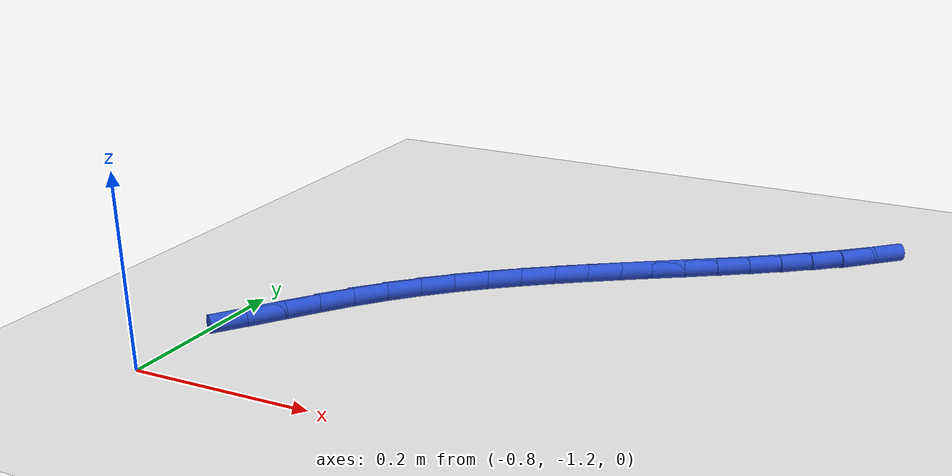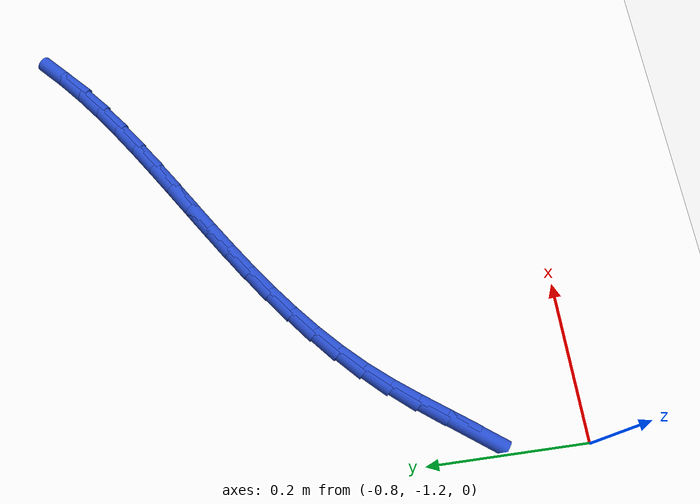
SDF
<sdf version="1.6">
 <world name="default">
  <model name="ground_plane">
   <static>1</static>
   <link name="link">
    <collision name="collision">
     <geometry><plane><normal>0 0 1</normal><size>100 100</size></plane></geometry>
     <surface><friction><ode><mu>100</mu><mu2>50</mu2></ode></friction></surface>
    </collision>
    <visual name="visual">
     <cast_shadows>0</cast_shadows>
     <geometry><plane><normal>0 0 1</normal><size>100 100</size></plane></geometry>
     <material>
      <script><uri>file://media/materials/scripts/gazebo.material</uri><name>Gazebo/WhiteGlow</name></script>
     </material>
    </visual>
   </link>
  </model>
  <model name="line">
   <link name="link_193">
    <pose>-0.7697127541444658 -1.066687028318899 0.01 0 1.57 0.9310728428077684</pose>
    <collision name="collision">
     <geometry><cylinder><radius>0.01</radius><length>0.08</length></cylinder></geometry>
    </collision>
    <visual name="visual">
     <material>
      <script><name>Gazebo/Blue</name><uri>file://media/materials/scripts/gazebo.material</uri></script>
     </material>
     <geometry><cylinder><radius>0.01</radius><length>0.08</length></cylinder></geometry>
    </visual>
   </link>
   <link name="link_194">
    <pose>-0.7471598686152789 -1.0363786586097241 0.01 0 1.57 0.9407574857423959</pose>
    <collision name="collision">
     <geometry><cylinder><radius>0.01</radius><length>0.08</length></cylinder></geometry>
    </collision>
    <visual name="visual">
     <material>
      <script><name>Gazebo/Blue</name><uri>file://media/materials/scripts/gazebo.material</uri></script>
     </material>
     <geometry><cylinder><radius>0.01</radius><length>0.08</length></cylinder></geometry>
    </visual>
   </link>
   <link name="link_195">
    <pose>-0.7246697009612525 -1.0055353196231323 0.01 0 1.57 0.919632203085264</pose>
    <collision name="collision">
     <geometry><cylinder><radius>0.01</radius><length>0.08</length></cylinder></geometry>
    </collision>
    <visual name="visual">
     <material>
      <script><name>Gazebo/Blue</name><uri>file://media/materials/scripts/gazebo.material</uri></script>
     </material>
     <geometry><cylinder><radius>0.01</radius><length>0.08</length></cylinder></geometry>
    </visual>
   </link>
   <link name="link_196">
    <pose>-0.7015104005914353 -0.9751442483891849 0.01 0 1.57 0.868469284615286</pose>
    <collision name="collision">
     <geometry><cylinder><radius>0.01</radius><length>0.08</length></cylinder></geometry>
    </collision>
    <visual name="visual">
     <material>
      <script><name>Gazebo/Blue</name><uri>file://media/materials/scripts/gazebo.material</uri></script>
     </material>
     <geometry><cylinder><radius>0.01</radius><length>0.08</length></cylinder></geometry>
    </visual>
   </link>
   <link name="link_197">
    <pose>-0.6769786246604919 -0.9461562713886646 0.01 0 1.57 0.8065476235225575</pose>
    <collision name="collision">
     <geometry><cylinder><radius>0.01</radius><length>0.08</length></cylinder></geometry>
    </collision>
    <visual name="visual">
     <material>
      <script><name>Gazebo/Blue</name><uri>file://media/materials/scripts/gazebo.material</uri></script>
     </material>
     <geometry><cylinder><radius>0.01</radius><length>0.08</length></cylinder></geometry>
    </visual>
   </link>
   <link name="link_198">
    <pose>-0.6508552080532423 -0.9189038155508525 0.01 0 1.57 0.7510631614010751</pose>
    <collision name="collision">
     <geometry><cylinder><radius>0.01</radius><length>0.08</length></cylinder></geometry>
    </collision>
    <visual name="visual">
     <material>
      <script><name>Gazebo/Blue</name><uri>file://media/materials/scripts/gazebo.material</uri></script>
     </material>
     <geometry><cylinder><radius>0.01</radius><length>0.08</length></cylinder></geometry>
    </visual>
   </link>
   <link name="link_199">
    <pose>-0.6233255645440667 -0.8932025731675787 0.01 0 1.57 0.7029341207505421</pose>
    <collision name="collision">
     <geometry><cylinder><radius>0.01</radius><length>0.08</length></cylinder></geometry>
    </collision>
    <visual name="visual">
     <material>
      <script><name>Gazebo/Blue</name><uri>file://media/materials/scripts/gazebo.material</uri></script>
     </material>
     <geometry><cylinder><radius>0.01</radius><length>0.08</length></cylinder></geometry>
    </visual>
   </link>
   <link name="link_200">
    <pose>-0.5945875347282576 -0.8688523647959782 0.01 0 1.57 0.6623315044845373</pose>
    <collision name="collision">
     <geometry><cylinder><radius>0.01</radius><length>0.08</length></cylinder></geometry>
    </collision>
    <visual name="visual">
     <material>
      <script><name>Gazebo/Blue</name><uri>file://media/materials/scripts/gazebo.material</uri></script>
     </material>
     <geometry><cylinder><radius>0.01</radius><length>0.08</length></cylinder></geometry>
    </visual>
   </link>
   <link name="link_201">
    <pose>-0.5648389592011067 -0.8456530109931859 0.01 0 1.57 0.6292732169507281</pose>
    <collision name="collision">
     <geometry><cylinder><radius>0.01</radius><length>0.08</length></cylinder></geometry>
    </collision>
    <visual name="visual">
     <material>
      <script><name>Gazebo/Blue</name><uri>file://media/materials/scripts/gazebo.material</uri></script>
     </material>
     <geometry><cylinder><radius>0.01</radius><length>0.08</length></cylinder></geometry>
    </visual>
   </link>
   <link name="link_202">
    <pose>-0.534277678557908 -0.8234043323163376 0.01 0 1.57 0.6036926674400621</pose>
    <collision name="collision">
     <geometry><cylinder><radius>0.01</radius><length>0.08</length></cylinder></geometry>
    </collision>
    <visual name="visual">
     <material>
      <script><name>Gazebo/Blue</name><uri>file://media/materials/scripts/gazebo.material</uri></script>
     </material>
     <geometry><cylinder><radius>0.01</radius><length>0.08</length></cylinder></geometry>
    </visual>
   </link>
   <link name="link_203">
    <pose>-0.5031015333939529 -0.8019061493225679 0.01 0 1.57 0.585494927703753</pose>
    <collision name="collision">
     <geometry><cylinder><radius>0.01</radius><length>0.08</length></cylinder></geometry>
    </collision>
    <visual name="visual">
     <material>
      <script><name>Gazebo/Blue</name><uri>file://media/materials/scripts/gazebo.material</uri></script>
     </material>
     <geometry><cylinder><radius>0.01</radius><length>0.08</length></cylinder></geometry>
    </visual>
   </link>
   <link name="link_204">
    <pose>-0.47150836430453413 -0.7809582825690117 0.01 0 1.57 0.5745987277977632</pose>
    <collision name="collision">
     <geometry><cylinder><radius>0.01</radius><length>0.08</length></cylinder></geometry>
    </collision>
    <visual name="visual">
     <material>
      <script><name>Gazebo/Blue</name><uri>file://media/materials/scripts/gazebo.material</uri></script>
     </material>
     <geometry><cylinder><radius>0.01</radius><length>0.08</length></cylinder></geometry>
    </visual>
   </link>
   <link name="link_205">
    <pose>-0.43969601188494406 -0.7603605526128042 0.01 0 1.57 0.5709651766293877</pose>
    <collision name="collision">
     <geometry><cylinder><radius>0.01</radius><length>0.08</length></cylinder></geometry>
    </collision>
    <visual name="visual">
     <material>
      <script><name>Gazebo/Blue</name><uri>file://media/materials/scripts/gazebo.material</uri></script>
     </material>
     <geometry><cylinder><radius>0.01</radius><length>0.08</length></cylinder></geometry>
    </visual>
   </link>
   <link name="link_206">
    <pose>-0.4078623167304746 -0.7399127800110801 0.01 0 1.57 0.5746148405170786</pose>
    <collision name="collision">
     <geometry><cylinder><radius>0.01</radius><length>0.08</length></cylinder></geometry>
    </collision>
    <visual name="visual">
     <material>
      <script><name>Gazebo/Blue</name><uri>file://media/materials/scripts/gazebo.material</uri></script>
     </material>
     <geometry><cylinder><radius>0.01</radius><length>0.08</length></cylinder></geometry>
    </visual>
   </link>
   <link name="link_207">
    <pose>-0.37620511943641965 -0.7194147853209754 0.01 0 1.57 0.5856343776091106</pose>
    <collision name="collision">
     <geometry><cylinder><radius>0.01</radius><length>0.08</length></cylinder></geometry>
    </collision>
    <visual name="visual">
     <material>
      <script><name>Gazebo/Blue</name><uri>file://media/materials/scripts/gazebo.material</uri></script>
     </material>
     <geometry><cylinder><radius>0.01</radius><length>0.08</length></cylinder></geometry>
    </visual>
   </link>
   <link name="link_208">
    <pose>-0.34492226059807074 -0.6986663890996242 0.01 0 1.57 0.6041728443038467</pose>
    <collision name="collision">
     <geometry><cylinder><radius>0.01</radius><length>0.08</length></cylinder></geometry>
    </collision>
    <visual name="visual">
     <material>
      <script><name>Gazebo/Blue</name><uri>file://media/materials/scripts/gazebo.material</uri></script>
     </material>
     <geometry><cylinder><radius>0.01</radius><length>0.08</length></cylinder></geometry>
    </visual>
   </link>
   <link name="link_209">
    <pose>-0.3142115808107206 -0.6774674119041624 0.01 0 1.57 0.6304264357088915</pose>
    <collision name="collision">
     <geometry><cylinder><radius>0.01</radius><length>0.08</length></cylinder></geometry>
    </collision>
    <visual name="visual">
     <material>
      <script><name>Gazebo/Blue</name><uri>file://media/materials/scripts/gazebo.material</uri></script>
     </material>
     <geometry><cylinder><radius>0.01</radius><length>0.08</length></cylinder></geometry>
    </visual>
   </link>
   <link name="link_210">
    <pose>-0.2842709206696608 -0.6556176742917238 0.01 0 1.57 0.6646091313439858</pose>
    <collision name="collision">
     <geometry><cylinder><radius>0.01</radius><length>0.08</length></cylinder></geometry>
    </collision>
    <visual name="visual">
     <material>
      <script><name>Gazebo/Blue</name><uri>file://media/materials/scripts/gazebo.material</uri></script>
     </material>
     <geometry><cylinder><radius>0.01</radius><length>0.08</length></cylinder></geometry>
    </visual>
   </link>
   <link name="link_211">
    <pose>-0.25529812077018543 -0.6329169968194449 0.01 0 1.57 0.7069059744560705</pose>
    <collision name="collision">
     <geometry><cylinder><radius>0.01</radius><length>0.08</length></cylinder></geometry>
    </collision>
    <visual name="visual">
     <material>
      <script><name>Gazebo/Blue</name><uri>file://media/materials/scripts/gazebo.material</uri></script>
     </material>
     <geometry><cylinder><radius>0.01</radius><length>0.08</length></cylinder></geometry>
    </visual>
   </link>
   <link name="link_212">
    <pose>-0.2274910217075861 -0.60916520004446 0.01 0 1.57 0.7574063353395486</pose>
    <collision name="collision">
     <geometry><cylinder><radius>0.01</radius><length>0.08</length></cylinder></geometry>
    </collision>
    <visual name="visual">
     <material>
      <script><name>Gazebo/Blue</name><uri>file://media/materials/scripts/gazebo.material</uri></script>
     </material>
     <geometry><cylinder><radius>0.01</radius><length>0.08</length></cylinder></geometry>
    </visual>
   </link>
  </model>
 </world>
</sdf>
